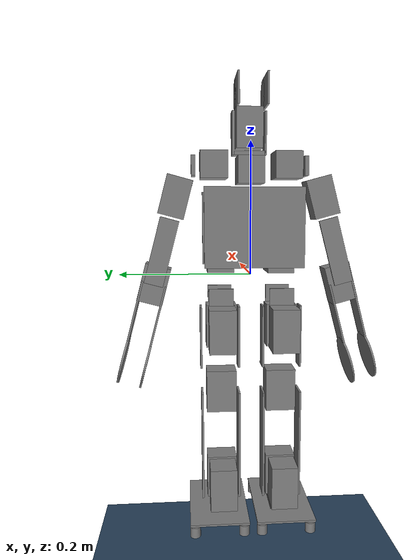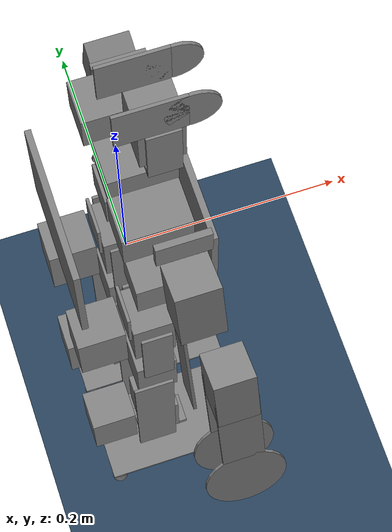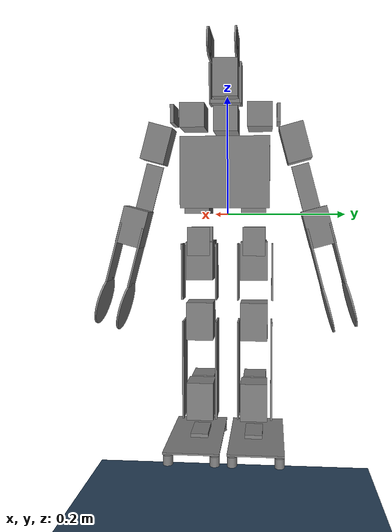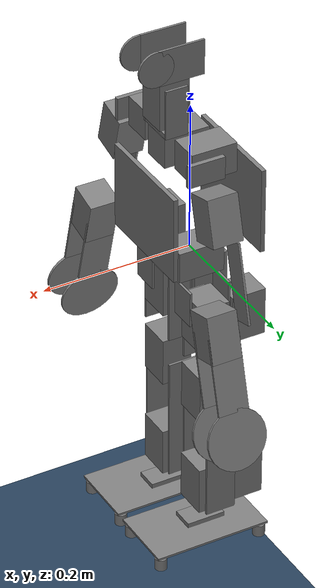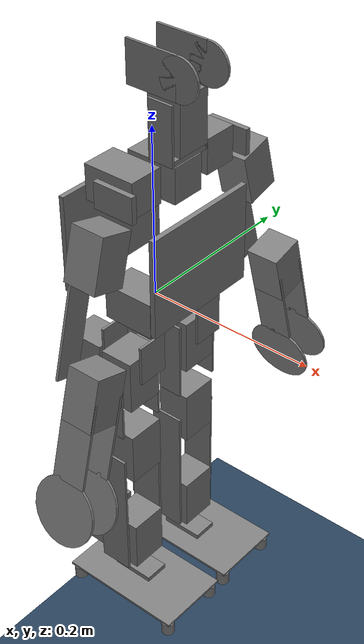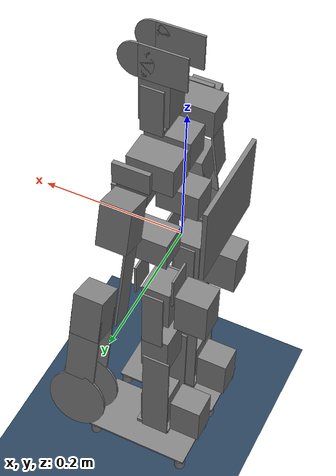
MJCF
<mujoco model="h1 scene">
	<include file="robot.xml"/>

	<visual>
		<headlight diffuse="0.6 0.6 0.6" ambient="0.3 0.3 0.3" specular="0 0 0"/>
		<rgba haze="0.15 0.25 0.35 1"/>
		<global azimuth="160" elevation="-20"/>
	</visual>

	<asset>
		<texture type="skybox" builtin="gradient" rgb1="0.3 0.5 0.7" rgb2="0 0 0" width="512" height="3072"/>
		<texture type="2d" name="groundplane" builtin="checker" mark="edge" rgb1="0.2 0.3 0.4" rgb2="0.1 0.2 0.3"
			markrgb="0.8 0.8 0.8" width="300" height="300"/>
		<material name="groundplane" texture="groundplane" texuniform="true" texrepeat="5 5" reflectance="0.2"/>
	</asset>

	<worldbody>
		<light pos="0 0 3.5" dir="0 0 -1" directional="true"/>
		<geom name="floor" size="0 0 0.05" pos="0 0 -0.5" type="plane" material="groundplane"/>
	</worldbody>
</mujoco>

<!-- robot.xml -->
<mujoco model="sigmaban">
	<compiler angle="radian"/>
	<worldbody>
		<body name="torso">
			<freejoint name="root"/>
			<geom size="0.0725 0.057796 0.003" pos="0.0603892 1.47174e-07 0.0680823" quat="0.5 -0.5 0.5 -0.5" type="box"/>
			<geom size="0.0201 0.03055 0.0205" pos="0.0209392 0.0464001 0.022" quat="0 0.707107 -0.707107 0" type="box"/>
			<geom size="0.0201 0.03055 0.0205" pos="0.0209392 -0.0463999 0.022" quat="0 0.707107 -0.707107 0" type="box"/>
			<geom size="0.0201 0.03055 0.0205" pos="0.0158392 1.47174e-07 0.157" quat="0.707107 0 0 -0.707107" type="box"/>
			<geom size="0.0725 0.057796 0.003" pos="-0.0596108 1.47174e-07 0.0719177" quat="0.5 0.5 0.5 0.5" type="box"/>
			<geom size="0.0201 0.03055 0.0205" pos="0.0108392 0.0560001 0.164" quat="0.5 -0.5 -0.5 -0.5" type="box"/>
			<geom size="0.0201 0.03055 0.0205" pos="0.0108392 -0.0559999 0.164" quat="0.5 0.5 0.5 -0.5" type="box"/>
			<body name="u_neck" pos="0.0333892 1.47174e-07 0.1805" quat="0.707107 0 0 -0.707107">
				<inertial pos="0 0 0.0206334" quat="0.707107 0 0 0.707107" mass="0.0544799" diaginertia="5.16952e-05 3.05787e-05 2.98525e-05"/>
				<joint name="head_yaw" pos="0 0 0" axis="0 0 1" range="-2.0944 2.0944"/>
				<geom size="0.015 0.032901 0.0015" pos="0.025 0 0.032901" quat="0.5 0.5 -0.5 -0.5" type="box"/>
				<geom size="0.015 0.032901 0.0015" pos="-0.025 0 0.032901" quat="0.5 0.5 0.5 0.5" type="box"/>
				<geom size="0.0245 0.015 0.003125" pos="0 0 0.003125" quat="0 1 0 0" type="box"/>
				<body name="head_2023__field_of_view_false" pos="-0.0235 0 0.058302" quat="0.5 0.5 -0.5 -0.5">
					<inertial pos="-0.000139838 0.00397747 -0.0233757" quat="0.713826 0.697167 -0.0325639 0.05787" mass="0.257265" diaginertia="0.000251953 0.000245992 0.000105535"/>
					<joint name="head_pitch" pos="0 0 0" axis="0 0 1" range="-0.785398 1.5708"/>
					<geom size="0.0235 0.0015" pos="-0.0238 0.0365 -0.005" quat="0 0 1 0" type="cylinder"/>
					<geom size="0.0308 0.0235 0.0015" pos="0.01 0.0365 -0.005" quat="0 0 1 0" type="box"/>
					<geom size="0.0235 0.0015" pos="-0.0238 0.0365 -0.049" quat="0 0 1 0" type="cylinder"/>
					<geom size="0.0308 0.0235 0.0015" pos="0.01 0.0365 -0.049" quat="0 0 1 0" type="box"/>
					<geom size="0.0201 0.03055 0.0205" pos="0 -0.01755 -0.0235" type="box"/>
				</body>
			</body>
			<body name="u_shoulder_2023" pos="0.0283892 0.0795001 0.164" quat="0.707107 -0.707107 0 0">
				<inertial pos="0 0.00364642 0.0214003" quat="0.534183 0.463302 0.534183 0.463302" mass="0.0751043" diaginertia="5.70899e-05 4.53448e-05 3.35766e-05"/>
				<joint name="left_shoulder_pitch" pos="0 0 0" axis="0 0 1" range="-2.18166 2.18166"/>
				<geom size="0.0245 0.015 0.003125" pos="0 0 0.007125" quat="0 -1 0 0" type="box"/>
				<body name="left_humerus" pos="0.0235 0.03 0.03" quat="0.092296 -0.701057 0.092296 -0.701057">
					<inertial pos="0.000340637 -0.0522685 -0.0268822" quat="0.6755 0.737155 -0.00965607 0.0144769" mass="0.243502" diaginertia="0.0007708 0.000757172 7.90289e-05"/>
					<joint name="left_shoulder_roll" pos="0 0 0" axis="0 0 1" range="-0.261799 1.309"/>
					<geom size="0.0201 0.03055 0.0205" pos="0 -0.01755 -0.0235" type="box"/>
					<geom size="0.0525 0.015 0.0015" pos="0 -0.1045 -0.04" quat="0 0.707107 -0.707107 0" type="box"/>
					<body name="radius_v2" pos="0.0235 -0.142 -0.0025" quat="0.707107 0 0.707107 0">
						<inertial pos="7.98171e-05 -0.0556905 -0.0234333" quat="0.516125 0.5144 -0.483923 0.484589" mass="0.256846" diaginertia="0.000947096 0.000937203 0.000130591"/>
						<joint name="left_elbow" pos="0 0 0" axis="0 0 1" range="-2.79253 0.261799"/>
						<geom size="0.04 0.0015" pos="0 -0.1496 -0.042" quat="0.707107 0 0 -0.707107" type="cylinder"/>
						<geom size="0.0497756 0.0206 0.0015" pos="0 -0.0649756 -0.042" quat="0.707107 0 0 -0.707107" type="box"/>
						<geom size="0.0201 0.03055 0.0205" pos="0 -0.01755 -0.0235" quat="1 0 0 0" type="box"/>
						<geom size="0.04 0.0015" pos="0 -0.1496 -0.005" quat="0.707107 0 0 -0.707107" type="cylinder"/>
						<geom size="0.0497756 0.0206 0.0015" pos="0 -0.0649756 -0.005" quat="0.707107 0 0 -0.707107" type="box"/>
					</body>
				</body>
			</body>
			<body name="u_shoulder_2023_2" pos="0.0283892 -0.0794999 0.164" quat="0 0 -0.707107 -0.707107">
				<inertial pos="0 -0.00364642 -0.0214003" quat="0.534183 0.463302 0.534183 0.463302" mass="0.0751043" diaginertia="5.70899e-05 4.53448e-05 3.35766e-05"/>
				<joint name="right_shoulder_pitch" pos="0 0 0" axis="0 0 1" range="-2.18166 2.18166"/>
				<geom size="0.0245 0.015 0.003125" pos="0 0 -0.007125" type="box"/>
				<body name="right_humerus" pos="-0.0235 -0.03 -0.03" quat="0.701057 0.092296 -0.701057 -0.092296">
					<inertial pos="-0.000172255 -0.0522685 -0.0268669" quat="0.675487 0.736848 -0.0236007 0.014685" mass="0.243502" diaginertia="0.000770875 0.000757172 7.90454e-05"/>
					<joint name="right_shoulder_roll" pos="0 0 0" axis="0 0 1" range="-1.309 0.261799"/>
					<geom size="0.0525 0.015 0.0015" pos="0 -0.1045 -0.04" quat="0 -0.707107 0.707107 0" type="box"/>
					<geom size="0.0201 0.03055 0.0205" pos="0 -0.01755 -0.0235" type="box"/>
					<body name="radius_v2_2" pos="-0.0235 -0.142 -0.0025" quat="0 -0.707107 0 -0.707107">
						<inertial pos="7.98171e-05 0.0556905 0.0234333" quat="0.484589 0.483923 -0.5144 0.516125" mass="0.256846" diaginertia="0.000947096 0.000937203 0.000130591"/>
						<joint name="right_elbow" pos="0 0 0" axis="0 0 1" range="-2.79253 0.261799"/>
						<geom size="0.04 0.0015" pos="0 0.1496 0.005" quat="0 0.707107 0.707107 0" type="cylinder"/>
						<geom size="0.0497756 0.0206 0.0015" pos="0 0.0649756 0.005" quat="0 0.707107 0.707107 0" type="box"/>
						<geom size="0.04 0.0015" pos="0 0.1496 0.042" quat="0 0.707107 0.707107 0" type="cylinder"/>
						<geom size="0.0497756 0.0206 0.0015" pos="0 0.0649756 0.042" quat="0 0.707107 0.707107 0" type="box"/>
						<geom size="0.0201 0.03055 0.0205" pos="0 0.01755 0.0235" quat="0 1 0 0" type="box"/>
					</body>
				</body>
			</body>
			<body name="u_block_2023" pos="0.0033892 0.0464001 -0.021" quat="0 0 0 -1">
				<inertial pos="-0.00509532 -8.44195e-07 -0.00985131" quat="0.531959 0.465906 0.466024 0.531765" mass="0.0630136" diaginertia="4.24266e-05 3.5526e-05 2.00009e-05"/>
				<joint name="left_hip_yaw" pos="0 0 0" axis="0 0 1" range="-1.0472 1.0472"/>
				<geom size="0.01875 0.02375 0.0015" pos="-0.03144 0 -0.02375" quat="0.5 0.5 0.5 0.5" type="box"/>
				<geom size="0.01875 0.02375 0.0015" pos="0.0219 0 -0.02375" quat="0.5 -0.5 0.5 -0.5" type="box"/>
				<body name="mx106_block_hip__list_0bj1pweadmbeeq_hip" pos="0.0234 0 -0.04" quat="0.5 0.5 -0.5 -0.5">
					<inertial pos="-0.000525167 -0.0153964 0.00382779" quat="0.996695 -0.0796662 -0.00761504 0.0139099" mass="0.397097" diaginertia="0.000428697 0.000375755 0.000176713"/>
					<joint name="left_hip_roll" pos="0 0 0" axis="0 0 1" range="-0.523599 0.610865"/>
					<geom size="0.0201 0.03255 0.023" pos="0 -0.01805 -0.026" type="box"/>
					<geom size="0.0201 0.03255 0.023" pos="0 -0.01805 0.0234" quat="0.707107 0 0.707107 0" type="box"/>
					<body name="left_knee_2023" pos="0.0295 0 0.0234" quat="0 0.707107 0 0.707107">
						<inertial pos="-3.04946e-05 0.100616 -0.0296228" quat="0.722599 0.691267 -0.000117213 -0.000114115" mass="0.268473" diaginertia="0.000539256 0.000462483 0.000122223"/>
						<joint name="left_hip_pitch" pos="0 0 0" axis="0 0 1" range="-1.5708 1.5708"/>
						<geom size="0.0201 0.03255 0.023" pos="0 0.12195 -0.0295" quat="1 0 0 0" type="box"/>
						<geom size="0.015 0.04825 0.0015" pos="0 0.03725 -0.057" quat="0 1 0 0" type="box"/>
						<geom size="0.015 0.04825 0.0015" pos="0 0.03725 0.0015" type="box"/>
						<body name="tibia_2023" pos="0 0.14 -0.001" quat="1 0 0 0">
							<inertial pos="-0.00296199 0.0631405 -0.0268398" quat="0.706918 0.707174 -0.00934954 -0.00915237" mass="0.113077" diaginertia="0.000351979 0.00027164 0.000103748"/>
							<joint name="left_knee" pos="0 0 0" axis="0 0 1" range="0 3.14159"/>
							<geom size="0.0202131 0.0850495 0.0015" pos="-0.0062131 0.068951 0.0015" quat="0 0 -1 0" type="box"/>
							<geom size="0.0202131 0.0850495 0.0015" pos="-0.0062131 0.068951 -0.05594" quat="0 0 -1 0" type="box"/>
							<body name="mx106_block_mir_ankle" pos="0 0.14 0" quat="0 0 0 1">
								<inertial pos="0.0195695 0.0153964 -0.0290274" quat="-0.0662501 0.699432 0.0464073 0.710107" mass="0.397097" diaginertia="0.000428738 0.000375795 0.000176713"/>
								<joint name="left_ankle_pitch" pos="0 0 0" axis="0 0 1" range="-1.5708 1.5708"/>
								<geom size="0.0201 0.03255 0.023" pos="0 0.01805 -0.0285" quat="0 0 0 1" type="box"/>
								<geom size="0.0201 0.03255 0.023" pos="0.0494 0.01805 -0.0285" quat="0 -0.707107 0 0.707107" type="box"/>
								<body name="left_foot___list_t0v6opd9rekumc_default" pos="0.0234 0 -0.0285" quat="0.707107 0 -0.707107 0">
									<inertial pos="0.00454445 -0.0365542 0.0466461" quat="0.711591 -0.00420022 0.0112517 0.702491" mass="0.281856" diaginertia="0.000922792 0.000718237 0.000264953"/>
									<joint name="left_ankle_roll" pos="0 0 0" axis="0 0 1" range="-0.785398 0.785398"/>
									<geom size="0.008 0.008" pos="0.0435 -0.0535 -0.03213" quat="0.707107 0.707107 0 0" type="cylinder"/>
									<geom size="0.02617 0.015 0.003125" pos="0 -0.036875 0.02817" quat="0.5 0.5 0.5 -0.5" type="box"/>
									<geom size="0.008 0.008" pos="-0.0325 -0.0535 -0.03213" quat="0.707107 0.707107 0 0" type="cylinder"/>
									<geom size="0.008 0.008" pos="0.0435 -0.0535 0.10947" quat="0 0 -0.707107 0.707107" type="cylinder"/>
									<geom size="0.046 0.0788 0.0015" pos="0.0055 -0.0415 0.03867" quat="0.707107 -0.707107 0 0" type="box"/>
									<geom size="0.008 0.008" pos="-0.0325 -0.0535 0.10947" quat="0 0 -0.707107 0.707107" type="cylinder"/>
								</body>
							</body>
						</body>
					</body>
				</body>
			</body>
			<body name="u_block_2023_2" pos="0.0033892 -0.0463999 -0.021" quat="0 0 0 -1">
				<inertial pos="-0.00509532 -8.44195e-07 -0.00985131" quat="0.531959 0.465906 0.466024 0.531765" mass="0.0630136" diaginertia="4.24266e-05 3.5526e-05 2.00009e-05"/>
				<joint name="right_hip_yaw" pos="0 0 0" axis="0 0 1" range="-1.0472 1.0472"/>
				<geom size="0.01875 0.02375 0.0015" pos="-0.03144 0 -0.02375" quat="0.5 0.5 0.5 0.5" type="box"/>
				<geom size="0.01875 0.02375 0.0015" pos="0.0219 0 -0.02375" quat="0.5 -0.5 0.5 -0.5" type="box"/>
				<body name="mx106_block_mir_hip__list_mr67plvazplf9a_hip" pos="0.0234 0 -0.04" quat="0.5 0.5 -0.5 -0.5">
					<inertial pos="0.000527445 -0.0153964 0.00383064" quat="0.996695 -0.0796624 0.0075433 -0.0140338" mass="0.397097" diaginertia="0.000428741 0.000375798 0.000176713"/>
					<joint name="right_hip_roll" pos="0 0 0" axis="0 0 1" range="-0.610865 0.523599"/>
					<geom size="0.0201 0.03255 0.023" pos="0 -0.01805 -0.026" type="box"/>
					<geom size="0.0201 0.03255 0.023" pos="0 -0.01805 0.0234" quat="0.707107 0 -0.707107 0" type="box"/>
					<body name="right_knee_2023" pos="-0.0295 0 0.0234" quat="0.707107 0 0.707107 0">
						<inertial pos="-3.04946e-05 -0.100616 0.0296089" quat="0.722631 0.691234 0.000116647 0.000114696" mass="0.268473" diaginertia="0.000539257 0.000462486 0.000122221"/>
						<joint name="right_hip_pitch" pos="0 0 0" axis="0 0 1" range="-1.5708 1.5708"/>
						<geom size="0.015 0.04825 0.0015" pos="0 -0.03725 -0.0015" quat="0 1 0 0" type="box"/>
						<geom size="0.015 0.04825 0.0015" pos="0 -0.03725 0.057" quat="1 0 0 0" type="box"/>
						<geom size="0.0201 0.03255 0.023" pos="0 -0.12195 0.0295" quat="0 -1 0 0" type="box"/>
						<body name="tibia_2023_2" pos="0 -0.14 0.001" quat="0 0 0 -1">
							<inertial pos="-0.00296199 0.0631406 0.0268398" quat="0.707175 0.706918 -0.00915244 -0.00934946" mass="0.113077" diaginertia="0.000351979 0.00027164 0.000103748"/>
							<joint name="right_knee" pos="0 0 0" axis="0 0 1" range="0 3.14159"/>
							<geom size="0.0202131 0.0850495 0.0015" pos="-0.0062131 0.068951 0.05594" quat="0 0 1 0" type="box"/>
							<geom size="0.0202131 0.0850495 0.0015" pos="-0.0062131 0.068951 -0.0015" quat="0 0 -1 0" type="box"/>
							<body name="mx106_block_ankle__list_0bj1pweadmbeeq_default" pos="0 0.14 0" quat="1 0 0 0">
								<inertial pos="-0.0195724 -0.0153964 0.0290252" quat="-0.0661652 0.699382 0.0464976 0.710158" mass="0.397097" diaginertia="0.000428694 0.000375752 0.000176714"/>
								<joint name="right_ankle_pitch" pos="0 0 0" axis="0 0 1" range="-1.5708 1.5708"/>
								<geom size="0.0201 0.03255 0.023" pos="0 -0.01805 0.0285" quat="0 0 -1 0" type="box"/>
								<geom size="0.0201 0.03255 0.023" pos="-0.0494 -0.01805 0.0285" quat="0.707107 0 0.707107 0" type="box"/>
								<body name="right_foot_" pos="-0.0234 0 0.0285" quat="0 -0.707107 0 -0.707107">
									<inertial pos="-0.00454439 -0.0365542 0.0466461" quat="0.702491 -0.0112519 0.00420004 0.711591" mass="0.281856" diaginertia="0.000922792 0.000718237 0.000264953"/>
									<joint name="right_ankle_roll" pos="0 0 0" axis="0 0 1" range="-0.785398 0.785398"/>
									<geom size="0.02617 0.015 0.003125" pos="0 -0.036875 0.02817" quat="0.5 0.5 0.5 -0.5" type="box"/>
									<geom size="0.008 0.008" pos="-0.0435 -0.0535 -0.03213" quat="0.707107 0.707107 0 0" type="cylinder"/>
									<geom size="0.046 0.0788 0.0015" pos="-0.0055 -0.0415 0.03867" quat="0.707107 -0.707107 0 0" type="box"/>
									<geom size="0.008 0.008" pos="0.0325 -0.0535 -0.03213" quat="0.707107 0.707107 0 0" type="cylinder"/>
									<geom size="0.008 0.008" pos="-0.0435 -0.0535 0.10947" quat="0 0 -0.707107 0.707107" type="cylinder"/>
									<geom size="0.008 0.008" pos="0.0325 -0.0535 0.10947" quat="0 0 -0.707107 0.707107" type="cylinder"/>
								</body>
							</body>
						</body>
					</body>
				</body>
			</body>
		</body>
	</worldbody>
</mujoco>
